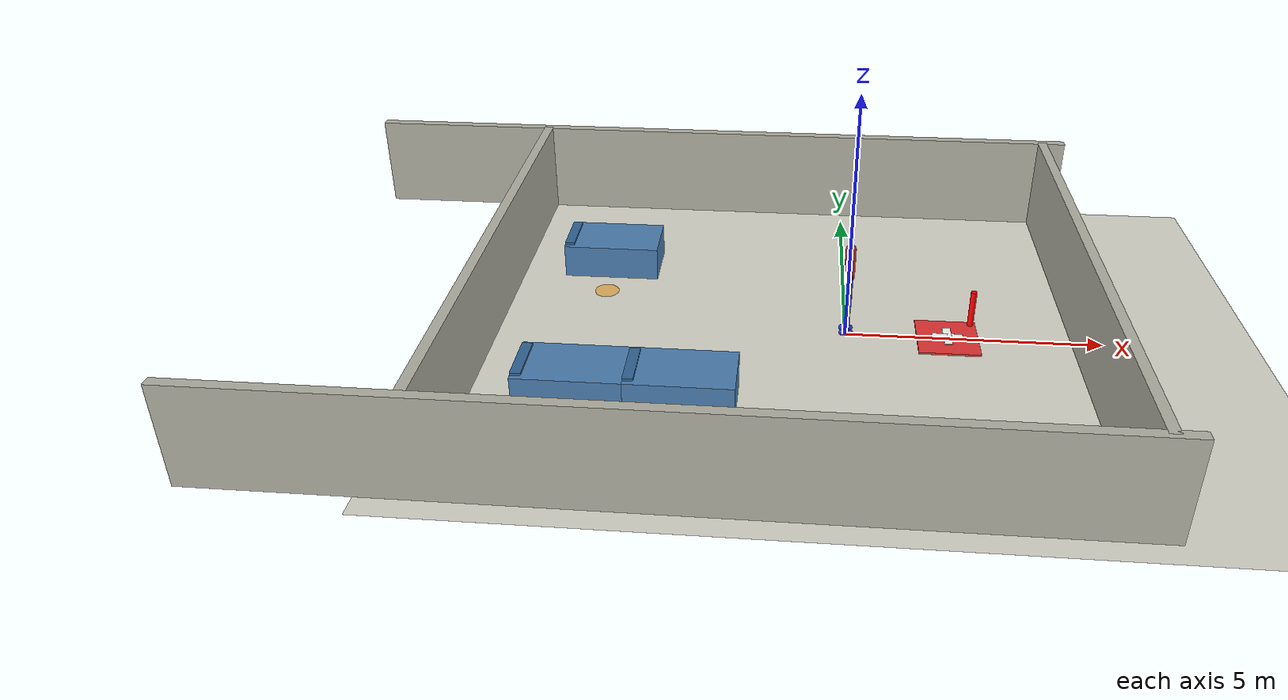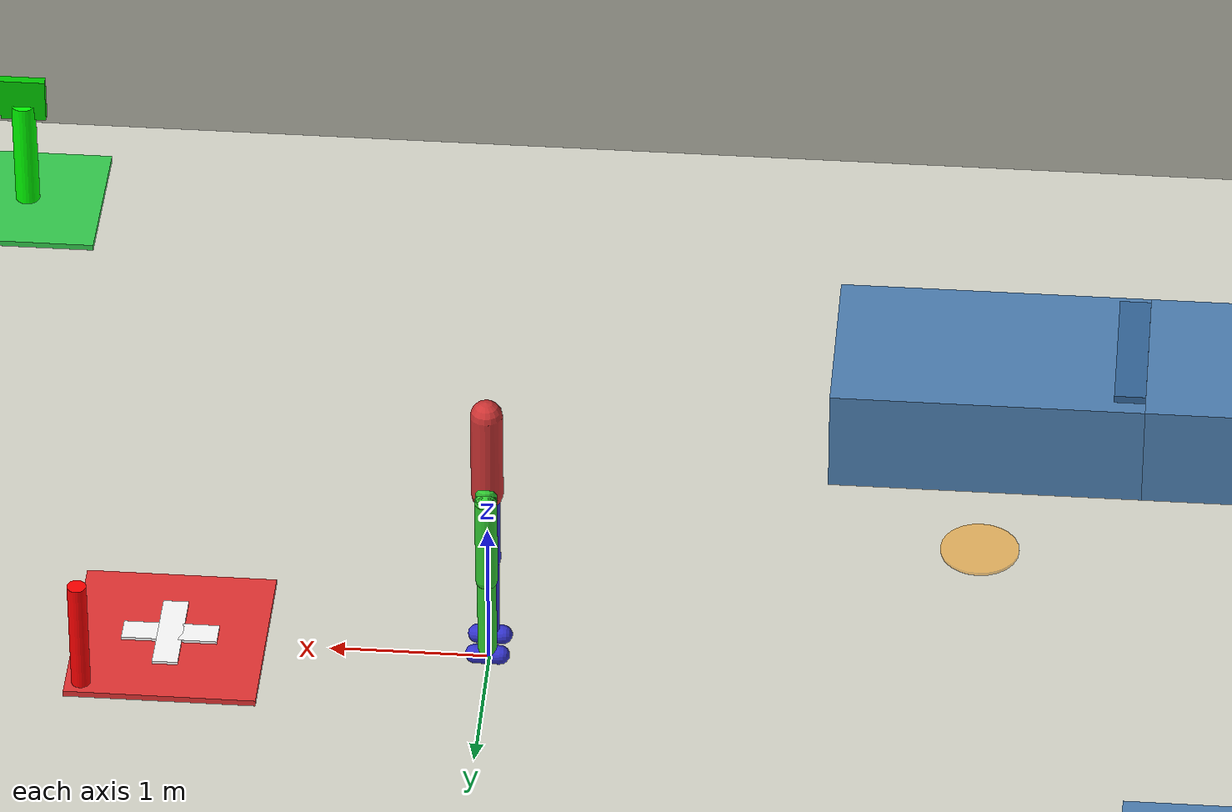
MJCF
<mujoco model="hospital_scene">
    <compiler angle="degree"/>
    <option timestep="0.0005"/>

    <asset>
        <material name="floor_mat" rgba="0.85 0.85 0.80 1"/>
        <material name="wall_mat" rgba="0.7 0.7 0.65 1"/>
        <material name="bed_mat" rgba="0.3 0.5 0.7 1"/>
        <material name="charging_mat" rgba="0.2 0.8 0.3 1"/>
        <material name="supply_mat" rgba="0.9 0.2 0.2 1"/>
        <material name="waypoint_mat" rgba="1.0 0.6 0.0 0.5"/>
    </asset>

    <worldbody>
        <light name="sun" directional="true" dir="-1 -1 -2" castshadow="true"/>
        <light name="room_light" pos="0 0 4" dir="0 0 -1" diffuse="0.8 0.8 0.8"/>

        <!-- Hospital Floor (12m x 10m) -->
        <geom name="ground" type="plane" size="8 6 0.1" material="floor_mat"/>

        <!-- ============ WALLS (with collision) ============ -->
        <!-- North wall -->
        <geom name="wall_north" type="box" pos="-3 5.5 1" size="8 0.1 1" material="wall_mat"/>
        <!-- South wall -->
        <geom name="wall_south" type="box" pos="-3 -5.5 1" size="8 0.1 1" material="wall_mat"/>
        <!-- East wall -->
        <geom name="wall_east" type="box" pos="4.5 0 1" size="0.1 5.5 1" material="wall_mat"/>
        <!-- West wall -->
        <geom name="wall_west" type="box" pos="-7 0 1" size="0.1 5.5 1" material="wall_mat"/>

        <!-- ============ MEDICINE SUPPLY ZONE (Red) ============ -->
        <body name="supply_zone" pos="2 0 0">
            <!-- Red platform for medicine supply -->
            <geom name="supply_base" type="box" pos="0 0 0.02" size="0.6 0.6 0.02"
                  material="supply_mat" contype="0" conaffinity="0"/>
            <!-- Red marker post -->
            <geom name="supply_marker" type="cylinder" pos="0.5 0.5 0.4" size="0.06 0.4"
                  rgba="1.0 0.0 0.0 1" contype="0" conaffinity="0"/>
            <!-- Cross symbol on top -->
            <geom name="supply_cross_h" type="box" pos="0 0 0.06" size="0.3 0.08 0.01"
                  rgba="1.0 1.0 1.0 1" contype="0" conaffinity="0"/>
            <geom name="supply_cross_v" type="box" pos="0 0 0.06" size="0.08 0.3 0.01"
                  rgba="1.0 1.0 1.0 1" contype="0" conaffinity="0"/>
        </body>

        <!-- ============ CHARGING STATION (Southeast Corner) ============ -->
        <body name="charging_station" pos="3.5 -4.5 0">
            <!-- Base platform -->
            <geom name="charging_base" type="box" pos="0 0 0.02" size="0.5 0.5 0.02"
                  material="charging_mat" contype="0" conaffinity="0"/>
            <!-- Marker post -->
            <geom name="charging_marker" type="cylinder" pos="0 0 0.4" size="0.08 0.4"
                  rgba="0.0 1.0 0.0 1" contype="0" conaffinity="0"/>
            <!-- "C" indicator for Charging -->
            <geom name="charging_indicator" type="box" pos="0 0 0.85" size="0.15 0.03 0.15"
                  rgba="0.0 0.8 0.0 1" contype="0" conaffinity="0"/>
        </body>

        <!-- ============ PATIENT BEDS (SOLID with collision) ============ -->
        <!-- Bed 1: waypoint at -3, -1 (robot approaches from +Y side) -->
        <body name="bed_1" pos="-3 -2.5 0">
            <!-- Solid bed block for collision -->
            <geom name="bed_1_solid" type="box" pos="0 0 0.35" size="1.0 0.6 0.35" material="bed_mat"/>
            <!-- Headboard -->
            <geom name="bed_1_headboard" type="box" pos="-0.9 0 0.55" size="0.1 0.5 0.2" rgba="0.2 0.4 0.6 1"/>
            <geom name="waypoint_1" type="cylinder" pos="0 1.2 0.01" size="0.25 0.01"
                  material="waypoint_mat" contype="0" conaffinity="0"/>
        </body>

        <!-- Bed 2: waypoint at -5, -1 (robot approaches from +Y side) -->
        <body name="bed_2" pos="-5 -2.5 0">
            <geom name="bed_2_solid" type="box" pos="0 0 0.35" size="1.0 0.6 0.35" material="bed_mat"/>
            <geom name="bed_2_headboard" type="box" pos="-0.9 0 0.55" size="0.1 0.5 0.2" rgba="0.2 0.4 0.6 1"/>
            <geom name="waypoint_2" type="cylinder" pos="0 1.2 0.01" size="0.25 0.01"
                  material="waypoint_mat" contype="0" conaffinity="0"/>
        </body>

        <!-- Bed 3: waypoint at -5, 1 (robot approaches from -Y side) -->
        <body name="bed_3" pos="-5 2.5 0">
            <geom name="bed_3_solid" type="box" pos="0 0 0.35" size="1.0 0.6 0.35" material="bed_mat"/>
            <geom name="bed_3_headboard" type="box" pos="-0.9 0 0.55" size="0.1 0.5 0.2" rgba="0.2 0.4 0.6 1"/>
            <geom name="waypoint_3" type="cylinder" pos="0 -1.2 0.01" size="0.25 0.01"
                  material="waypoint_mat" contype="0" conaffinity="0"/>
        </body>

        <!-- ============ BIPEDAL ROBOT at Charging Station ============ -->
        <!-- Robot starts at origin, facing +X direction -->
        <body name="torso" pos="0 0 1.6">
            <geom type="capsule" size="0.1 0.3" mass="8" rgba="0.8 0.2 0.2 1"/>
            <joint type="free"/>

            <!-- Right leg -->
            <body name="right_hip_z" pos="0 -0.05 -0.25">
                <joint name="right_hip_z_j" type="hinge" axis="0 0 1" range="-20 20"/>
                <geom type="capsule" size="0.07 0.025" mass="0.1" rgba="0.2 0.2 0.8 1"
                      pos="0 0.0 -0.025" contype="0" conaffinity="0"/>
                <body name="right_hip_y" pos="0 -0.00 -0.05">
                    <joint name="right_hip_y_j" type="hinge" axis="1 0 0" range="-20 20"/>
                    <geom type="capsule" size="0.07 0.025" mass="0.1" rgba="0.2 0.2 0.8 1"
                          pos="0 -0.025 0.0" euler="90 0 0" contype="0" conaffinity="0"/>
                    <body name="right_thigh" pos="0 -0.05 -0.0">
                        <joint name="right_hip" type="hinge" axis="0 1 0" range="-60 60"/>
                        <geom type="capsule" size="0.07 0.3" mass="1" rgba="0.2 0.2 0.8 1"
                              pos="0 0 -0.3" contype="0" conaffinity="0"/>
                        <body name="right_shin" pos="0 0 -0.6">
                            <joint name="right_knee" type="hinge" axis="0 1 0" range="-120 -5"/>
                            <geom name="right_shin_geom" type="capsule" size="0.06 0.3" mass="1"
                                  rgba="0.2 0.2 0.8 1" pos="0 0 -0.3"/>
                            <body name="right_foot" pos="0 0 -0.6">
                                <joint name="right_foot_j" type="hinge" axis="0 1 0" range="-60 60"/>
                                <geom name="right_foot_geom" type="capsule" size="0.06 0.08" mass="0.1"
                                      rgba="0.2 0.2 0.8 1" euler="-0 90 0"/>
                            </body>
                        </body>
                    </body>
                </body>
            </body>

            <!-- Left leg -->
            <body name="left_hip_z" pos="0 0.05 -0.25">
                <joint name="left_hip_z_j" type="hinge" axis="0 0 1" range="-20 20"/>
                <geom type="capsule" size="0.07 0.025" mass="0.1" rgba="0.2 0.8 0.2 1"
                      pos="0 0.0 -0.025" contype="0" conaffinity="0"/>
                <body name="left_hip_y" pos="0 0.0 -0.05">
                    <joint name="left_hip_y_j" type="hinge" axis="1 0 0" range="-20 20"/>
                    <geom type="capsule" size="0.07 0.025" mass="0.1" rgba="0.2 0.8 0.2 1"
                          pos="0 0.025 0.0" euler="90 0 0" contype="0" conaffinity="0"/>
                    <body name="left_thigh" pos="0 0.05 -0.0">
                        <joint name="left_hip" type="hinge" axis="0 1 0" range="-120 120"/>
                        <geom type="capsule" size="0.07 0.3" mass="1" rgba="0.2 0.8 0.2 1"
                              pos="0 0 -0.3" contype="0" conaffinity="0"/>
                        <body name="left_shin" pos="0 0 -0.6">
                            <joint name="left_knee" type="hinge" axis="0 1 0" range="-120 -5"/>
                            <geom name="left_shin_geom" type="capsule" size="0.06 0.3" mass="1"
                                  rgba="0.2 0.8 0.2 1" pos="0 0 -0.3"/>
                            <body name="left_foot" pos="0 0 -0.6">
                                <joint name="left_foot_j" type="hinge" axis="0 1 0" range="-60 60"/>
                                <geom name="left_foot_geom" type="capsule" size="0.06 0.08" mass="0.1"
                                      rgba="0.2 0.2 0.8 1" euler="-0 90 0"/>
                            </body>
                        </body>
                    </body>
                </body>
            </body>
        </body>
    </worldbody>

    <actuator>
        <velocity joint="right_hip_z_j" kv="15"/>
        <velocity joint="right_hip_y_j" kv="30"/>
        <velocity joint="right_hip" kv="30"/>
        <velocity joint="right_knee" kv="30"/>
        <velocity joint="right_foot_j" kv="0.1"/>
        <velocity joint="left_hip_z_j" kv="15"/>
        <velocity joint="left_hip_y_j" kv="30"/>
        <velocity joint="left_hip" kv="30"/>
        <velocity joint="left_knee" kv="30"/>
        <velocity joint="left_foot_j" kv="0.1"/>
    </actuator>
</mujoco>
